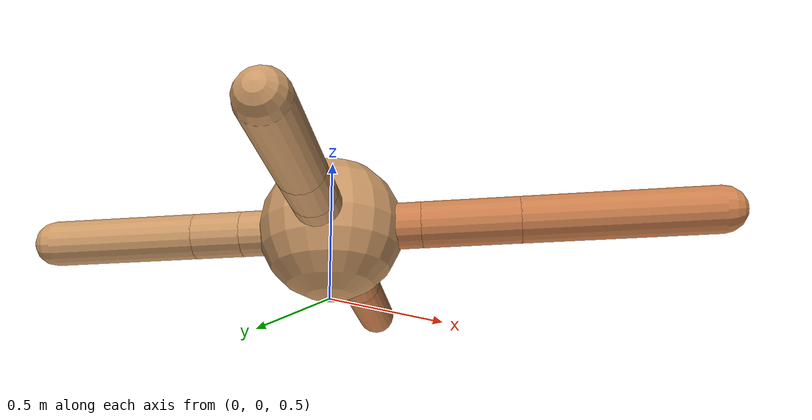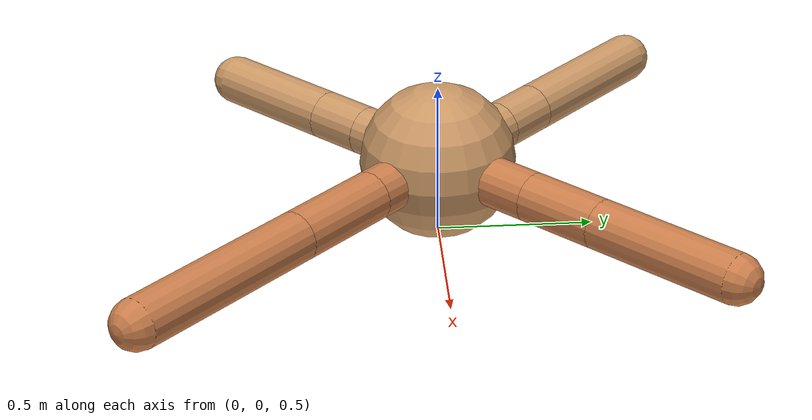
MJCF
<mujoco model="ant">
  <compiler angle="degree" coordinate="local" inertiafromgeom="true" />
  <option integrator="RK4" timestep="0.01" />
  <custom>
    <numeric data="0.0 0.0 0.55 1.0 0.0 0.0 0.0 0.0 1.0 0.0 -1.0 0.0 -1.0 0.0 1.0" name="init_qpos" />
  </custom>
  <default>
    <joint armature="1" damping="1" limited="true" />
    <geom conaffinity="0" condim="3" density="5.0" friction="1.5 0.1 0.1" margin="0.01" rgba="0.8 0.6 0.4 1" />
  </default>
  <worldbody>
    <body name="torso" pos="0 0 0.75">
      <geom name="torso_geom" pos="0 0 0" size="0.25" type="sphere" />

      <body name="front_left_leg" pos="0 0 0">
        <geom fromto="0.0 0.0 0.0 0.2714698209453631 0.2714698209453631 0.0" name="aux_1_geom" size="0.08" type="capsule" rgba=".8 .5 .3 1" />
        <body name="aux_1" pos="0.2714698209453631 0.2714698209453631 0.0">
          <joint axis="0 0 1" name="hip_1" pos="0.0 0.0 0.0" range="-40 40" type="hinge" />
          <geom fromto="0.0 0.0 0.0 0.1843244751160184 0.1843244751160184 0.0" name="left_leg_geom" size="0.08" type="capsule" rgba=".8 .5 .3 1" />
          <body pos="0.1843244751160184 0.1843244751160184 0.0" name="front_left_foot">
            <joint axis="-1 1 0" name="ankle_1" pos="0.0 0.0 0.0" range="30 100" type="hinge" />
            <geom fromto="0.0 0.0 0.0 0.3474822781013449 0.3474822781013449 0.0" name="left_ankle_geom" size="0.08" type="capsule" rgba=".8 .5 .3 1" />
          </body>
        </body>
      </body>
      <body name="front_right_leg" pos="0 0 0">
        <geom fromto="0.0 0.0 0.0 -0.21979923232583376 0.21979923232583376 0.0" name="aux_2_geom" size="0.08" type="capsule" />
        <body name="aux_2" pos="-0.21979923232583376 0.21979923232583376 0.0">
          <joint axis="0 0 1" name="hip_2" pos="0.0 0.0 0.0" range="-40 40" type="hinge" />
          <geom fromto="0.0 0.0 0.0 -0.12090164426731537 0.12090164426731537 0.0" name="right_leg_geom" size="0.08" type="capsule" />
          <body pos="-0.12090164426731537 0.12090164426731537 0.0" name="front_right_foot">
            <joint axis="1 1 0" name="ankle_2" pos="0.0 0.0 0.0" range="-100 -30" type="hinge" />
            <geom fromto="0.0 0.0 0.0 -0.3683538946751692 0.3683538946751692 0.0" name="right_ankle_geom" size="0.08" type="capsule" />
          </body>
        </body>
      </body>
      <body name="left_back_leg" pos="0 0 0">
        <geom fromto="0.0 0.0 0.0 -0.21808009187476798 -0.21808009187476798 0.0" name="aux_3_geom" size="0.08" type="capsule" />
        <body name="aux_3" pos="-0.21808009187476798 -0.21808009187476798 0.0">
          <joint axis="0 0 1" name="hip_3" pos="0.0 0.0 0.0" range="-40 40" type="hinge" />
          <geom fromto="0.0 0.0 0.0 -0.12333708175840184 -0.12333708175840184 0.0" name="back_leg_geom" size="0.08" type="capsule" />
          <body pos="-0.12333708175840184 -0.12333708175840184 0.0" name="left_back_foot">
            <joint axis="-1 1 0" name="ankle_3" pos="0.0 0.0 0.0" range="-100 -30" type="hinge" />
            <geom fromto="0.0 0.0 0.0 -0.29406084080703876 -0.29406084080703876 0.0" name="third_ankle_geom" size="0.08" type="capsule" />
          </body>
        </body>
      </body>
      <body name="right_back_leg" pos="0 0 0">
        <geom fromto="0.0 0.0 0.0 0.22368040348786788 -0.22368040348786788 0.0" name="aux_4_geom" size="0.08" type="capsule" rgba=".8 .5 .3 1" />
        <body name="aux_4" pos="0.22368040348786788 -0.22368040348786788 0.0">
          <joint axis="0 0 1" name="hip_4" pos="0.0 0.0 0.0" range="-40 40" type="hinge" />
          <geom fromto="0.0 0.0 0.0 0.23396895906474607 -0.23396895906474607 0.0" name="rightback_leg_geom" size="0.08" type="capsule" rgba=".8 .5 .3 1" />
          <body pos="0.23396895906474607 -0.23396895906474607 0.0" name="right_back_foot">
            <joint axis="1 1 0" name="ankle_4" pos="0.0 0.0 0.0" range="30 100" type="hinge" />
            <geom fromto="0.0 0.0 0.0 0.45759266369036367 -0.45759266369036367 0.0" name="fourth_ankle_geom" size="0.08" type="capsule" rgba=".8 .5 .3 1" />
          </body>
        </body>
      </body>
    </body>
  </worldbody>
  <actuator>
    <motor ctrllimited="true" ctrlrange="-1.0 1.0" joint="hip_4" gear="150" />
    <motor ctrllimited="true" ctrlrange="-1.0 1.0" joint="ankle_4" gear="150" />
    <motor ctrllimited="true" ctrlrange="-1.0 1.0" joint="hip_1" gear="150" />
    <motor ctrllimited="true" ctrlrange="-1.0 1.0" joint="ankle_1" gear="150" />
    <motor ctrllimited="true" ctrlrange="-1.0 1.0" joint="hip_2" gear="150" />
    <motor ctrllimited="true" ctrlrange="-1.0 1.0" joint="ankle_2" gear="150" />
    <motor ctrllimited="true" ctrlrange="-1.0 1.0" joint="hip_3" gear="150" />
    <motor ctrllimited="true" ctrlrange="-1.0 1.0" joint="ankle_3" gear="150" />
  </actuator>
</mujoco>
